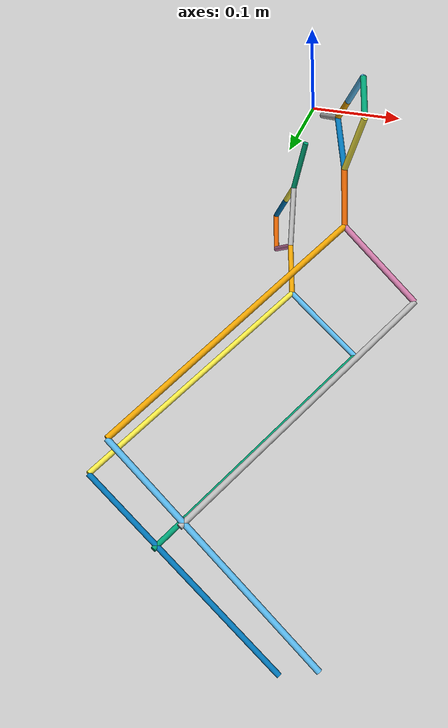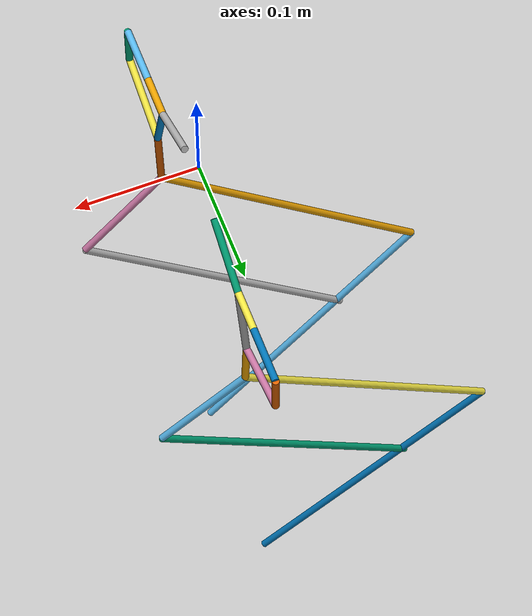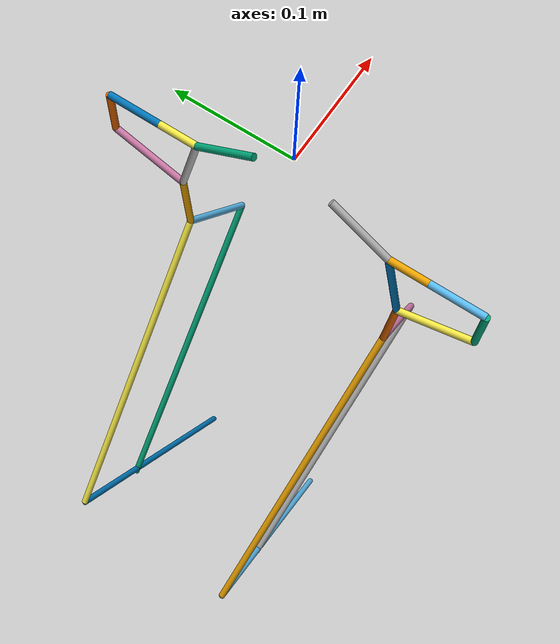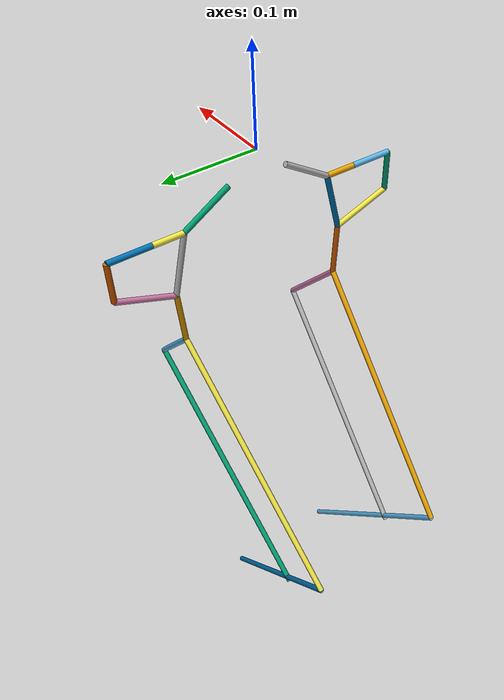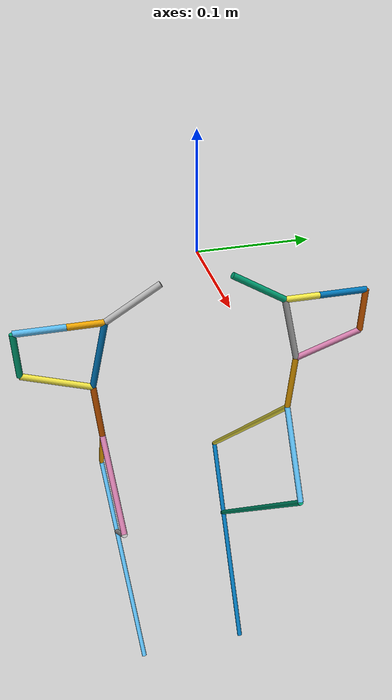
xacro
<?xml version="1.0"?>
<robot name="ALEX" xmlns:xacro="http://ros.org/wiki/xacro">

  <!-- HIP MECHANISM -->
  <xacro:property name="hip_l_0" value="0.041642" />
  <xacro:property name="hip_o_0_y" value="0.032497" />
  <xacro:property name="hip_o_0_z" value="-0.026038" />
  <xacro:property name="hip_l_1" value="0.05996" />
  <xacro:property name="hip_l_2" value="0.0338" />
  <xacro:property name="hip_l_3" value="0.046803" />
  <xacro:property name="hip_l_4" value="0.043656" />
  <xacro:property name="hip_l_5" value="0.067801" />
  <xacro:property name="hip_l_6" value="0.068139" />
  <xacro:property name="hip_l_7" value="0.059561" />

  <xacro:property name="hip_sigma_00" value="$141.297 * pi / 180}" />
  <xacro:property name="hip_sigma_0" value="${149.22 * pi / 180}" />
  <xacro:property name="hip_sigma_1" value="${134.896 * pi / 180}" />
  <xacro:property name="hip_sigma_2" value="${75.884 * pi / 180}" />
  <xacro:property name="hip_sigma_3" value="${109.314 * pi / 180}" />
  <xacro:property name="hip_sigma_4" value="${149.22 * pi / 180}" />
  <xacro:property name="hip_sigma_5" value="${75.425 * pi / 180}" />
  <xacro:property name="hip_sigma_6" value="${28.691 * pi / 180}" />
  <xacro:property name="hip_sigma_7" value="${104.574 * pi / 180}" />
  <xacro:property name="hip_sigma_8" value="${75.884 * pi / 180}" />

  <!-- MAIN MECHANISM -->
  <!-- CAD Lengths -->

  <!-- Actual Lengths -->
  <xacro:property name="main_l_1" value="0.100" />
  <xacro:property name="main_l_2" value="0.310" />
  <xacro:property name="main_l_3" value="0.315" />
  <xacro:property name="main_l_4" value="0.105" />
  <xacro:property name="main_l_5" value="0.170" />

  <material name="red">
    <color rgba="1 0 0 1"/>
  </material>

  <material name="green">
    <color rgba="0 1 0 1"/>
  </material>

  <material name="blue">
    <color rgba="0 0 1 1"/>
  </material>

  <material name="yellow">
    <color rgba="1 1 0 1"/>
  </material>

  <material name="silver">
    <color rgba="0.73 0.73 0.73 1"/>
  </material>

  <material name="black">
    <color rgba="0 0 0 1"/>
  </material>

  <material name="white">
    <color rgba="1 1 1 1"/>
  </material>

  <xacro:macro name="hip" params="prefix reflect mechanism">
    <!-- Hip Mechanism -->
    <!-- chain 1 -->
    <link name="${prefix}_base_link_to_${mechanism}_p00"/>
    <joint name="${prefix}_base_link_to_${mechanism}_p00_joint" type="continuous">
      <parent link="base_link"/>
      <child link="${prefix}_base_link_to_${mechanism}_p00"/>
      <axis rpy="0 0 0" xyz="0 0 1"/>
      <origin rpy="0 0 0" xyz="0 0 0"/>
    </joint>

    <link name="${prefix}_${mechanism}_p00_to_${mechanism}_p0">
      <visual>
        <geometry>
          <cylinder length="${hip_l_1}" radius="0.003"/>
        </geometry>
        <origin rpy="0 ${pi/2} 0" xyz="${hip_l_1/2} 0 0"/>
      </visual>
    </link>
    <joint name="${prefix}_${mechanism}_p00_to_${mechanism}_p0_joint" type="continuous">
      <parent link="${prefix}_base_link_to_${mechanism}_p00"/>
      <child link="${prefix}_${mechanism}_p00_to_${mechanism}_p0"/>
      <axis rpy="0 0 0" xyz="0 0 1"/>
      <origin rpy="${pi/2} ${pi - hip_sigma_0} ${reflect * pi/2}" xyz="0 ${reflect * hip_o_0_y} ${hip_o_0_z}"/>
    </joint>

    <link name="${prefix}_${mechanism}_p0_to_${mechanism}_p1">
      <visual>
        <geometry>
          <cylinder length="${hip_l_2}" radius="0.003"/>
        </geometry>
        <origin rpy="0 ${pi/2} 0" xyz="${hip_l_2/2} 0 0"/>
      </visual>
    </link>
    <joint name="${prefix}_${mechanism}_p0_to_${mechanism}_p1_joint" type="continuous">
      <parent link="${prefix}_${mechanism}_p00_to_${mechanism}_p0"/>
      <child link="${prefix}_${mechanism}_p0_to_${mechanism}_p1"/>
      <axis rpy="0 0 0" xyz="0 0 1"/>
      <origin rpy="0 0 ${hip_sigma_1 + hip_sigma_2 - pi} " xyz="${hip_l_1} 0 0"/>
    </joint>

    <link name="${prefix}_${mechanism}_p1_to_${mechanism}_p2">
      <visual>
        <geometry>
          <cylinder length="${hip_l_3}" radius="0.003"/>
        </geometry>
        <origin rpy="0 ${pi/2} 0" xyz="${hip_l_3/2} 0 0"/>
      </visual>
    </link>
    <joint name="${prefix}_${mechanism}_p1_to_${mechanism}_p2_joint" type="continuous">
      <parent link="${prefix}_${mechanism}_p0_to_${mechanism}_p1"/>
      <child link="${prefix}_${mechanism}_p1_to_${mechanism}_p2"/>
      <axis rpy="0 0 0" xyz="0 0 1"/>
      <origin rpy="0 0 ${hip_sigma_5 + hip_sigma_7 - pi} " xyz="${hip_l_2} 0 0"/>
    </joint>

    <link name="${prefix}_${mechanism}_p2_to_${mechanism}_p3">
      <visual>
        <geometry>
          <cylinder length="${hip_l_4}" radius="0.003"/>
        </geometry>
        <origin rpy="0 ${pi/2} 0" xyz="${hip_l_4/2} 0 0"/>
      </visual>
    </link>
    <joint name="${prefix}_${mechanism}_p2_to_${mechanism}_p3_joint" type="continuous">
      <parent link="${prefix}_${mechanism}_p1_to_${mechanism}_p2"/>
      <child link="${prefix}_${mechanism}_p2_to_${mechanism}_p3"/>
      <axis rpy="0 0 0" xyz="0 0 1"/>
      <origin rpy="0 0 ${-pi/2} " xyz="${hip_l_3} 0 0"/>
    </joint>

    <link name="${prefix}_${mechanism}_p3_to_${mechanism}_p4">
      <visual>
        <geometry>
          <cylinder length="${hip_l_5}" radius="0.003"/>
        </geometry>
        <origin rpy="0 ${pi/2} 0" xyz="${hip_l_5/2} 0 0"/>
      </visual>
    </link>
    <joint name="${prefix}_${mechanism}_p3_to_${mechanism}_p4_joint" type="continuous">
      <parent link="${prefix}_${mechanism}_p2_to_${mechanism}_p3"/>
      <child link="${prefix}_${mechanism}_p3_to_${mechanism}_p4"/>
      <axis rpy="0 0 0" xyz="0 0 1"/>
      <origin rpy="0 0 ${-(pi - 109.314 * pi / 180)} " xyz="${hip_l_4} 0 0"/> <!-- Value taken from CAD just for fun - it is calculated in alex state publisher -->
    </joint>

    <!-- chain 2 -->
    <link name="${prefix}_${mechanism}_p0_to_${mechanism}_p4">
      <visual>
        <geometry>
          <cylinder length="${hip_l_6}" radius="0.003"/>
        </geometry>
        <origin rpy="0 ${pi/2} 0" xyz="${hip_l_6/2} 0 0"/>
      </visual>
    </link>
    <joint name="${prefix}_${mechanism}_p0_to_${mechanism}_p4_joint" type="continuous">
      <parent link="${prefix}_${mechanism}_p00_to_${mechanism}_p0"/>
      <child link="${prefix}_${mechanism}_p0_to_${mechanism}_p4"/>
      <axis rpy="0 0 0" xyz="0 0 1"/>
      <origin rpy="0 0 ${-(pi - hip_sigma_1)}" xyz="${hip_l_1} 0 0"/>
    </joint>

    <link name="${prefix}_${mechanism}_p4_to_${mechanism}_p5">
      <visual>
        <geometry>
          <cylinder length="${hip_l_7}" radius="0.003"/>
        </geometry>
        <origin rpy="0 ${pi/2} 0" xyz="${hip_l_7/2} 0 0"/>
      </visual>
    </link>
    <joint name="${prefix}_${mechanism}_p4_to_${mechanism}_p5_joint" type="continuous">
      <parent link="${prefix}_${mechanism}_p0_to_${mechanism}_p4"/>
      <child link="${prefix}_${mechanism}_p4_to_${mechanism}_p5"/>
      <axis rpy="0 0 0" xyz="0 0 1"/>
      <origin rpy="0 0 ${-pi/10}" xyz="${hip_l_5} 0 0"/> <!-- -pi/10 chosen at random to make standard URDF look close to perfect -->
    </joint>
  </xacro:macro>

  <xacro:macro name="lowerLeg" params="prefix reflect mechanism">
    <!-- chain 1 -->
    <link name="${prefix}_${mechanism}_p0_to_${mechanism}_p1">
      <visual>
        <geometry>
          <cylinder length="${main_l_1}" radius="0.003"/>
        </geometry>
        <origin rpy="0 ${pi/2} 0" xyz="${main_l_1/2} 0 0"/>
      </visual>
    </link>
    <joint name="${prefix}_${mechanism}_p0_to_${mechanism}_p1_joint" type="continuous">
      <parent link="${prefix}_hip_p4_to_hip_p5"/>
      <child link="${prefix}_${mechanism}_p0_to_${mechanism}_p1"/>
      <axis rpy="0 0 0" xyz="0 0 1"/>
      <origin rpy="${reflect * pi/2} ${-reflect * pi/4} 0" xyz="${hip_l_7} 0 0"/>
    </joint>

    <link name="${prefix}_${mechanism}_p1_to_${mechanism}_p3">
      <visual>
        <geometry>
          <cylinder length="${main_l_3}" radius="0.003"/>
        </geometry>
        <origin rpy="0 ${pi/2} 0" xyz="${main_l_3/2} 0 0"/>
      </visual>
    </link>
    <joint name="${prefix}_${mechanism}_p1_to_${mechanism}_p3_joint" type="continuous">
      <parent link="${prefix}_${mechanism}_p0_to_${mechanism}_p1"/>
      <child link="${prefix}_${mechanism}_p1_to_${mechanism}_p3"/>
      <axis rpy="0 0 0" xyz="0 0 1"/>
      <origin rpy="0 0 ${-pi/2}" xyz="${main_l_1} 0 0"/>
    </joint>

    <!-- chain 2 -->
    <link name="${prefix}_${mechanism}_p0_to_${mechanism}_p2">
      <visual>
        <geometry>
          <cylinder length="${main_l_2}" radius="0.003"/>
        </geometry>
        <origin rpy="0 ${-pi/2} 0" xyz="${main_l_2/2} 0 0"/>
      </visual>
    </link>
    <joint name="${prefix}_${mechanism}_p0_to_${mechanism}_p2_joint" type="continuous">
      <parent link="${prefix}_hip_p4_to_hip_p5"/>
      <child link="${prefix}_${mechanism}_p0_to_${mechanism}_p2"/>
      <axis rpy="0 0 0" xyz="0 0 1"/>
      <origin rpy="${reflect * pi/2} ${reflect * pi/4} 0" xyz="${hip_l_7} 0 0"/>
    </joint>

    <link name="${prefix}_${mechanism}_p2_to_${mechanism}_p4">
      <visual>
        <geometry>
          <cylinder length="${main_l_4 + main_l_5}" radius="0.003"/>
        </geometry>
        <origin rpy="0 ${pi/2} 0" xyz="${(main_l_4 + main_l_5)/2} 0 0"/>
      </visual>
    </link>
    <joint name="${prefix}_${mechanism}_p2_to_${mechanism}_p4_joint" type="continuous">
      <parent link="${prefix}_${mechanism}_p0_to_${mechanism}_p2"/>
      <child link="${prefix}_${mechanism}_p2_to_${mechanism}_p4"/>
      <axis rpy="0 0 0" xyz="0 0 1"/>
      <origin rpy="0 0 ${pi/2}" xyz="${main_l_2} 0 0"/>
    </joint>

  <link name="${prefix}_${mechanism}_p4_to_foot"/>
  <joint name="${prefix}_${mechanism}_p4_to_foot_joint" type="continuous">
    <parent link="${prefix}_${mechanism}_p2_to_${mechanism}_p4"/>
    <child link="${prefix}_${mechanism}_p4_to_foot"/>
    <axis rpy="0 0 0" xyz="0 0 1"/>
    <origin rpy="0 0 0" xyz="${main_l_4 + main_l_5} 0 0"/>
  </joint>
</xacro:macro>

  <xacro:macro name="leg" params="prefix reflect">
    <xacro:hip prefix="${prefix}" reflect="${reflect}" mechanism="hip" />
    <xacro:lowerLeg prefix="${prefix}" reflect="${reflect}" mechanism="main" />
  </xacro:macro>

  <link name="base_link"/>
  <xacro:leg prefix="left" reflect="1" />
  <xacro:leg prefix="right" reflect="-1" />

</robot>
